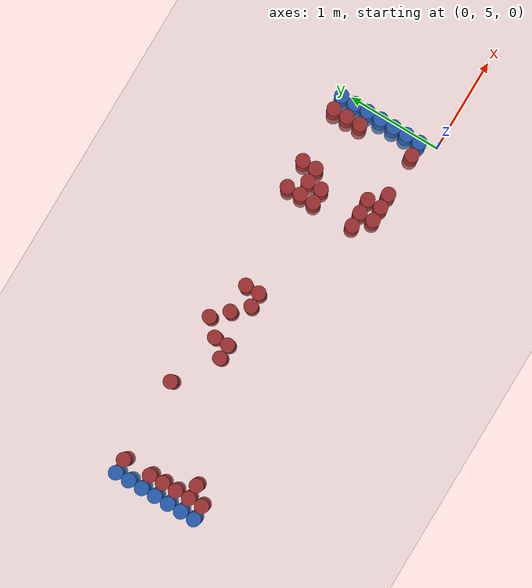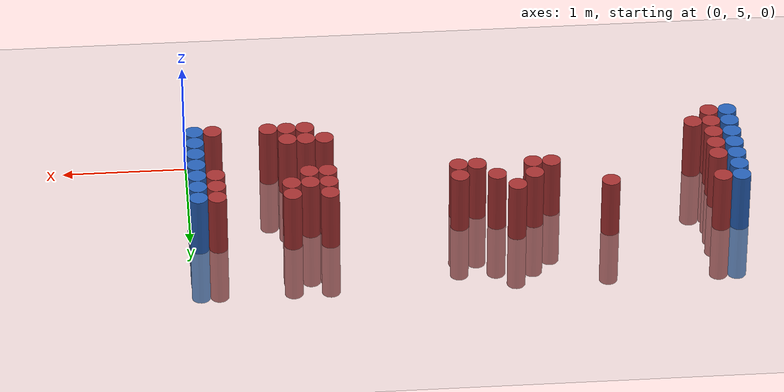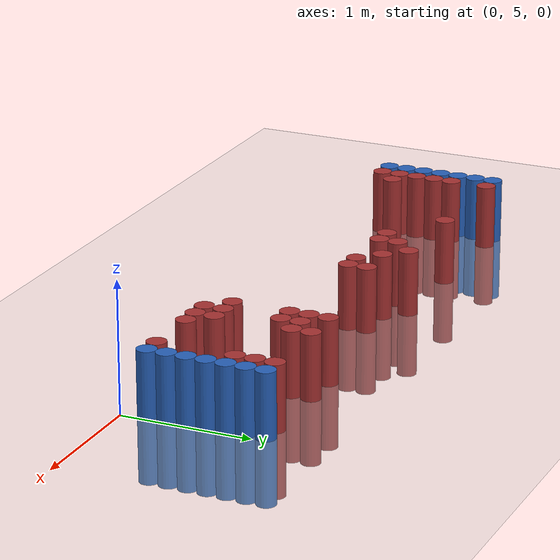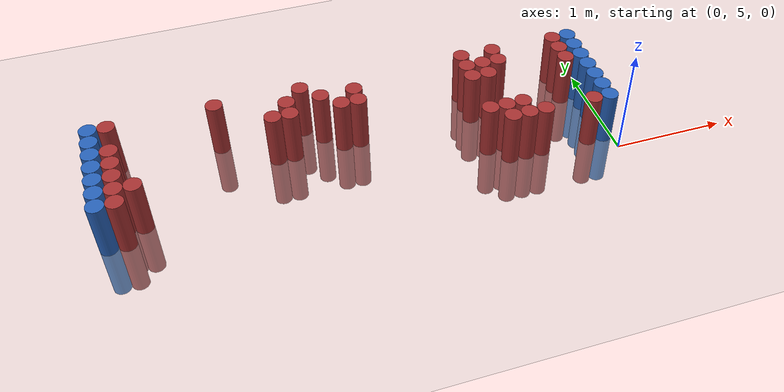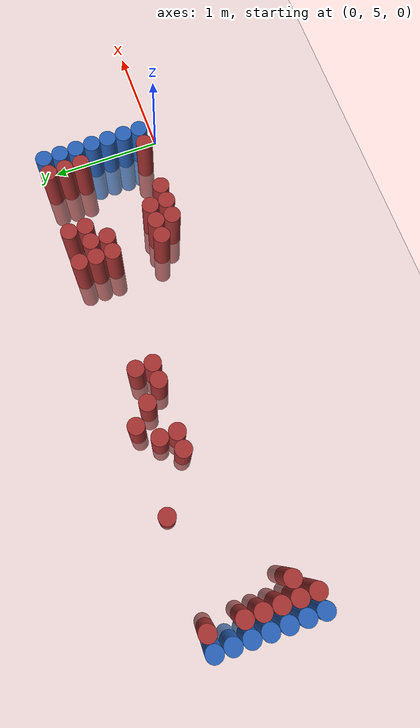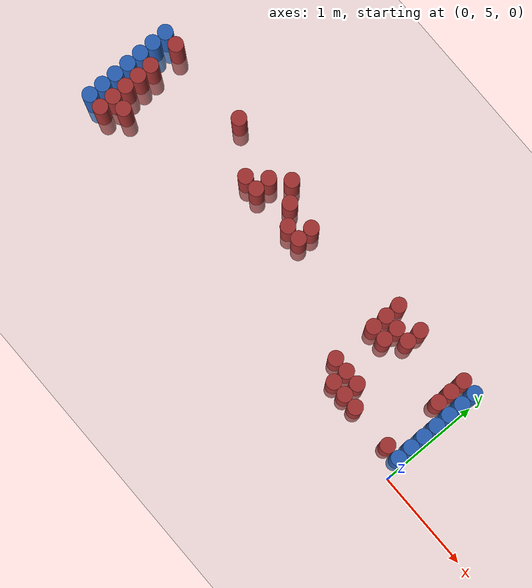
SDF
<sdf version="1.6">
 <world name="default">
  <model name="ground_plane">
   <static>1</static>
   <link name="link">
    <collision name="collision">
     <geometry><plane><normal>0 0 1</normal><size>100 100</size></plane></geometry>
     <surface><friction><ode><mu>100</mu><mu2>50</mu2></ode></friction></surface>
    </collision>
    <visual name="visual">
     <cast_shadows>0</cast_shadows>
     <geometry><plane><normal>0 0 1</normal><size>100 100</size></plane></geometry>
     <material>
      <script><uri>file://media/materials/scripts/gazebo.material</uri><name>Gazebo/Grey</name></script>
     </material>
    </visual>
   </link>
  </model>
  <model name="unit_cylinder_96">
   <static>1</static>
   <pose>-4.425000 5.175000 0.000000 0.000000 0.000000 0.000000</pose>
   <link name="link">
    <inertial>
     <mass>1</mass>
     <inertia><ixx>0.145833</ixx><ixy>0</ixy><ixz>0</ixz><iyy>0.145833</iyy><iyz>0</iyz><izz>0.125</izz></inertia>
    </inertial>
    <collision name="collision">
     <geometry><cylinder><radius>0.075000</radius><length>1</length></cylinder></geometry>
    </collision>
    <visual name="visual">
     <geometry><cylinder><radius>0.075000</radius><length>1</length></cylinder></geometry>
     <material>
      <ambient>0.152000 0.379000 0.720000 1</ambient>
      <diffuse>0.152000 0.379000 0.720000 1</diffuse>
     </material>
     <material>
      <script><name>Gazebo/Grey</name><uri>file://media/materials/scripts/gazebo.material</uri></script>
     </material>
    </visual>
   </link>
  </model>
  <model name="unit_cylinder_97">
   <static>1</static>
   <pose>-4.425000 5.325000 0.000000 0.000000 0.000000 0.000000</pose>
   <link name="link">
    <inertial>
     <mass>1</mass>
     <inertia><ixx>0.145833</ixx><ixy>0</ixy><ixz>0</ixz><iyy>0.145833</iyy><iyz>0</iyz><izz>0.125</izz></inertia>
    </inertial>
    <collision name="collision">
     <geometry><cylinder><radius>0.075000</radius><length>1</length></cylinder></geometry>
    </collision>
    <visual name="visual">
     <geometry><cylinder><radius>0.075000</radius><length>1</length></cylinder></geometry>
     <material>
      <ambient>0.152000 0.379000 0.720000 1</ambient>
      <diffuse>0.152000 0.379000 0.720000 1</diffuse>
     </material>
     <material>
      <script><name>Gazebo/Grey</name><uri>file://media/materials/scripts/gazebo.material</uri></script>
     </material>
    </visual>
   </link>
  </model>
  <model name="unit_cylinder_98">
   <static>1</static>
   <pose>-4.425000 5.475000 0.000000 0.000000 0.000000 0.000000</pose>
   <link name="link">
    <inertial>
     <mass>1</mass>
     <inertia><ixx>0.145833</ixx><ixy>0</ixy><ixz>0</ixz><iyy>0.145833</iyy><iyz>0</iyz><izz>0.125</izz></inertia>
    </inertial>
    <collision name="collision">
     <geometry><cylinder><radius>0.075000</radius><length>1</length></cylinder></geometry>
    </collision>
    <visual name="visual">
     <geometry><cylinder><radius>0.075000</radius><length>1</length></cylinder></geometry>
     <material>
      <ambient>0.152000 0.379000 0.720000 1</ambient>
      <diffuse>0.152000 0.379000 0.720000 1</diffuse>
     </material>
     <material>
      <script><name>Gazebo/Grey</name><uri>file://media/materials/scripts/gazebo.material</uri></script>
     </material>
    </visual>
   </link>
  </model>
  <model name="unit_cylinder_99">
   <static>1</static>
   <pose>-4.425000 5.625000 0.000000 0.000000 0.000000 0.000000</pose>
   <link name="link">
    <inertial>
     <mass>1</mass>
     <inertia><ixx>0.145833</ixx><ixy>0</ixy><ixz>0</ixz><iyy>0.145833</iyy><iyz>0</iyz><izz>0.125</izz></inertia>
    </inertial>
    <collision name="collision">
     <geometry><cylinder><radius>0.075000</radius><length>1</length></cylinder></geometry>
    </collision>
    <visual name="visual">
     <geometry><cylinder><radius>0.075000</radius><length>1</length></cylinder></geometry>
     <material>
      <ambient>0.152000 0.379000 0.720000 1</ambient>
      <diffuse>0.152000 0.379000 0.720000 1</diffuse>
     </material>
     <material>
      <script><name>Gazebo/Grey</name><uri>file://media/materials/scripts/gazebo.material</uri></script>
     </material>
    </visual>
   </link>
  </model>
  <model name="unit_cylinder_100">
   <static>1</static>
   <pose>-4.425000 5.775000 0.000000 0.000000 0.000000 0.000000</pose>
   <link name="link">
    <inertial>
     <mass>1</mass>
     <inertia><ixx>0.145833</ixx><ixy>0</ixy><ixz>0</ixz><iyy>0.145833</iyy><iyz>0</iyz><izz>0.125</izz></inertia>
    </inertial>
    <collision name="collision">
     <geometry><cylinder><radius>0.075000</radius><length>1</length></cylinder></geometry>
    </collision>
    <visual name="visual">
     <geometry><cylinder><radius>0.075000</radius><length>1</length></cylinder></geometry>
     <material>
      <ambient>0.152000 0.379000 0.720000 1</ambient>
      <diffuse>0.152000 0.379000 0.720000 1</diffuse>
     </material>
     <material>
      <script><name>Gazebo/Grey</name><uri>file://media/materials/scripts/gazebo.material</uri></script>
     </material>
    </visual>
   </link>
  </model>
  <model name="unit_cylinder_101">
   <static>1</static>
   <pose>-4.425000 5.925000 0.000000 0.000000 0.000000 0.000000</pose>
   <link name="link">
    <inertial>
     <mass>1</mass>
     <inertia><ixx>0.145833</ixx><ixy>0</ixy><ixz>0</ixz><iyy>0.145833</iyy><iyz>0</iyz><izz>0.125</izz></inertia>
    </inertial>
    <collision name="collision">
     <geometry><cylinder><radius>0.075000</radius><length>1</length></cylinder></geometry>
    </collision>
    <visual name="visual">
     <geometry><cylinder><radius>0.075000</radius><length>1</length></cylinder></geometry>
     <material>
      <ambient>0.152000 0.379000 0.720000 1</ambient>
      <diffuse>0.152000 0.379000 0.720000 1</diffuse>
     </material>
     <material>
      <script><name>Gazebo/Grey</name><uri>file://media/materials/scripts/gazebo.material</uri></script>
     </material>
    </visual>
   </link>
  </model>
  <model name="unit_cylinder_102">
   <static>1</static>
   <pose>-4.425000 6.075000 0.000000 0.000000 0.000000 0.000000</pose>
   <link name="link">
    <inertial>
     <mass>1</mass>
     <inertia><ixx>0.145833</ixx><ixy>0</ixy><ixz>0</ixz><iyy>0.145833</iyy><iyz>0</iyz><izz>0.125</izz></inertia>
    </inertial>
    <collision name="collision">
     <geometry><cylinder><radius>0.075000</radius><length>1</length></cylinder></geometry>
    </collision>
    <visual name="visual">
     <geometry><cylinder><radius>0.075000</radius><length>1</length></cylinder></geometry>
     <material>
      <ambient>0.152000 0.379000 0.720000 1</ambient>
      <diffuse>0.152000 0.379000 0.720000 1</diffuse>
     </material>
     <material>
      <script><name>Gazebo/Grey</name><uri>file://media/materials/scripts/gazebo.material</uri></script>
     </material>
    </visual>
   </link>
  </model>
  <model name="unit_cylinder_126">
   <static>1</static>
   <pose>-4.275000 5.175000 0.000000 0.000000 0.000000 0.000000</pose>
   <link name="link">
    <inertial>
     <mass>1</mass>
     <inertia><ixx>0.145833</ixx><ixy>0</ixy><ixz>0</ixz><iyy>0.145833</iyy><iyz>0</iyz><izz>0.125</izz></inertia>
    </inertial>
    <collision name="collision">
     <geometry><cylinder><radius>0.075000</radius><length>1</length></cylinder></geometry>
    </collision>
    <visual name="visual">
     <geometry><cylinder><radius>0.075000</radius><length>1</length></cylinder></geometry>
     <material>
      <ambient>0.648000 0.192000 0.192000 1</ambient>
      <diffuse>0.648000 0.192000 0.192000 1</diffuse>
     </material>
     <material>
      <script><name>Gazebo/Grey</name><uri>file://media/materials/scripts/gazebo.material</uri></script>
     </material>
    </visual>
   </link>
  </model>
  <model name="unit_cylinder_127">
   <static>1</static>
   <pose>-4.275000 5.325000 0.000000 0.000000 0.000000 0.000000</pose>
   <link name="link">
    <inertial>
     <mass>1</mass>
     <inertia><ixx>0.145833</ixx><ixy>0</ixy><ixz>0</ixz><iyy>0.145833</iyy><iyz>0</iyz><izz>0.125</izz></inertia>
    </inertial>
    <collision name="collision">
     <geometry><cylinder><radius>0.075000</radius><length>1</length></cylinder></geometry>
    </collision>
    <visual name="visual">
     <geometry><cylinder><radius>0.075000</radius><length>1</length></cylinder></geometry>
     <material>
      <ambient>0.648000 0.192000 0.192000 1</ambient>
      <diffuse>0.648000 0.192000 0.192000 1</diffuse>
     </material>
     <material>
      <script><name>Gazebo/Grey</name><uri>file://media/materials/scripts/gazebo.material</uri></script>
     </material>
    </visual>
   </link>
  </model>
  <model name="unit_cylinder_128">
   <static>1</static>
   <pose>-4.275000 5.475000 0.000000 0.000000 0.000000 0.000000</pose>
   <link name="link">
    <inertial>
     <mass>1</mass>
     <inertia><ixx>0.145833</ixx><ixy>0</ixy><ixz>0</ixz><iyy>0.145833</iyy><iyz>0</iyz><izz>0.125</izz></inertia>
    </inertial>
    <collision name="collision">
     <geometry><cylinder><radius>0.075000</radius><length>1</length></cylinder></geometry>
    </collision>
    <visual name="visual">
     <geometry><cylinder><radius>0.075000</radius><length>1</length></cylinder></geometry>
     <material>
      <ambient>0.648000 0.192000 0.192000 1</ambient>
      <diffuse>0.648000 0.192000 0.192000 1</diffuse>
     </material>
     <material>
      <script><name>Gazebo/Grey</name><uri>file://media/materials/scripts/gazebo.material</uri></script>
     </material>
    </visual>
   </link>
  </model>
  <model name="unit_cylinder_129">
   <static>1</static>
   <pose>-4.275000 5.625000 0.000000 0.000000 0.000000 0.000000</pose>
   <link name="link">
    <inertial>
     <mass>1</mass>
     <inertia><ixx>0.145833</ixx><ixy>0</ixy><ixz>0</ixz><iyy>0.145833</iyy><iyz>0</iyz><izz>0.125</izz></inertia>
    </inertial>
    <collision name="collision">
     <geometry><cylinder><radius>0.075000</radius><length>1</length></cylinder></geometry>
    </collision>
    <visual name="visual">
     <geometry><cylinder><radius>0.075000</radius><length>1</length></cylinder></geometry>
     <material>
      <ambient>0.648000 0.192000 0.192000 1</ambient>
      <diffuse>0.648000 0.192000 0.192000 1</diffuse>
     </material>
     <material>
      <script><name>Gazebo/Grey</name><uri>file://media/materials/scripts/gazebo.material</uri></script>
     </material>
    </visual>
   </link>
  </model>
  <model name="unit_cylinder_130">
   <static>1</static>
   <pose>-4.275000 5.775000 0.000000 0.000000 0.000000 0.000000</pose>
   <link name="link">
    <inertial>
     <mass>1</mass>
     <inertia><ixx>0.145833</ixx><ixy>0</ixy><ixz>0</ixz><iyy>0.145833</iyy><iyz>0</iyz><izz>0.125</izz></inertia>
    </inertial>
    <collision name="collision">
     <geometry><cylinder><radius>0.075000</radius><length>1</length></cylinder></geometry>
    </collision>
    <visual name="visual">
     <geometry><cylinder><radius>0.075000</radius><length>1</length></cylinder></geometry>
     <material>
      <ambient>0.648000 0.192000 0.192000 1</ambient>
      <diffuse>0.648000 0.192000 0.192000 1</diffuse>
     </material>
     <material>
      <script><name>Gazebo/Grey</name><uri>file://media/materials/scripts/gazebo.material</uri></script>
     </material>
    </visual>
   </link>
  </model>
  <model name="unit_cylinder_131">
   <static>1</static>
   <pose>-4.275000 6.075000 0.000000 0.000000 0.000000 0.000000</pose>
   <link name="link">
    <inertial>
     <mass>1</mass>
     <inertia><ixx>0.145833</ixx><ixy>0</ixy><ixz>0</ixz><iyy>0.145833</iyy><iyz>0</iyz><izz>0.125</izz></inertia>
    </inertial>
    <collision name="collision">
     <geometry><cylinder><radius>0.075000</radius><length>1</length></cylinder></geometry>
    </collision>
    <visual name="visual">
     <geometry><cylinder><radius>0.075000</radius><length>1</length></cylinder></geometry>
     <material>
      <ambient>0.648000 0.192000 0.192000 1</ambient>
      <diffuse>0.648000 0.192000 0.192000 1</diffuse>
     </material>
     <material>
      <script><name>Gazebo/Grey</name><uri>file://media/materials/scripts/gazebo.material</uri></script>
     </material>
    </visual>
   </link>
  </model>
  <model name="unit_cylinder_142">
   <static>1</static>
   <pose>-4.125000 5.325000 0.000000 0.000000 0.000000 0.000000</pose>
   <link name="link">
    <inertial>
     <mass>1</mass>
     <inertia><ixx>0.145833</ixx><ixy>0</ixy><ixz>0</ixz><iyy>0.145833</iyy><iyz>0</iyz><izz>0.125</izz></inertia>
    </inertial>
    <collision name="collision">
     <geometry><cylinder><radius>0.075000</radius><length>1</length></cylinder></geometry>
    </collision>
    <visual name="visual">
     <geometry><cylinder><radius>0.075000</radius><length>1</length></cylinder></geometry>
     <material>
      <ambient>0.648000 0.192000 0.192000 1</ambient>
      <diffuse>0.648000 0.192000 0.192000 1</diffuse>
     </material>
     <material>
      <script><name>Gazebo/Grey</name><uri>file://media/materials/scripts/gazebo.material</uri></script>
     </material>
    </visual>
   </link>
  </model>
  <model name="unit_cylinder_178">
   <static>1</static>
   <pose>-3.375000 6.075000 0.000000 0.000000 0.000000 0.000000</pose>
   <link name="link">
    <inertial>
     <mass>1</mass>
     <inertia><ixx>0.145833</ixx><ixy>0</ixy><ixz>0</ixz><iyy>0.145833</iyy><iyz>0</iyz><izz>0.125</izz></inertia>
    </inertial>
    <collision name="collision">
     <geometry><cylinder><radius>0.075000</radius><length>1</length></cylinder></geometry>
    </collision>
    <visual name="visual">
     <geometry><cylinder><radius>0.075000</radius><length>1</length></cylinder></geometry>
     <material>
      <ambient>0.648000 0.192000 0.192000 1</ambient>
      <diffuse>0.648000 0.192000 0.192000 1</diffuse>
     </material>
     <material>
      <script><name>Gazebo/Grey</name><uri>file://media/materials/scripts/gazebo.material</uri></script>
     </material>
    </visual>
   </link>
  </model>
  <model name="unit_cylinder_198">
   <static>1</static>
   <pose>-2.925000 5.775000 0.000000 0.000000 0.000000 0.000000</pose>
   <link name="link">
    <inertial>
     <mass>1</mass>
     <inertia><ixx>0.145833</ixx><ixy>0</ixy><ixz>0</ixz><iyy>0.145833</iyy><iyz>0</iyz><izz>0.125</izz></inertia>
    </inertial>
    <collision name="collision">
     <geometry><cylinder><radius>0.075000</radius><length>1</length></cylinder></geometry>
    </collision>
    <visual name="visual">
     <geometry><cylinder><radius>0.075000</radius><length>1</length></cylinder></geometry>
     <material>
      <ambient>0.648000 0.192000 0.192000 1</ambient>
      <diffuse>0.648000 0.192000 0.192000 1</diffuse>
     </material>
     <material>
      <script><name>Gazebo/Grey</name><uri>file://media/materials/scripts/gazebo.material</uri></script>
     </material>
    </visual>
   </link>
  </model>
  <model name="unit_cylinder_205">
   <static>1</static>
   <pose>-2.775000 5.775000 0.000000 0.000000 0.000000 0.000000</pose>
   <link name="link">
    <inertial>
     <mass>1</mass>
     <inertia><ixx>0.145833</ixx><ixy>0</ixy><ixz>0</ixz><iyy>0.145833</iyy><iyz>0</iyz><izz>0.125</izz></inertia>
    </inertial>
    <collision name="collision">
     <geometry><cylinder><radius>0.075000</radius><length>1</length></cylinder></geometry>
    </collision>
    <visual name="visual">
     <geometry><cylinder><radius>0.075000</radius><length>1</length></cylinder></geometry>
     <material>
      <ambient>0.648000 0.192000 0.192000 1</ambient>
      <diffuse>0.648000 0.192000 0.192000 1</diffuse>
     </material>
     <material>
      <script><name>Gazebo/Grey</name><uri>file://media/materials/scripts/gazebo.material</uri></script>
     </material>
    </visual>
   </link>
  </model>
  <model name="unit_cylinder_206">
   <static>1</static>
   <pose>-2.775000 5.925000 0.000000 0.000000 0.000000 0.000000</pose>
   <link name="link">
    <inertial>
     <mass>1</mass>
     <inertia><ixx>0.145833</ixx><ixy>0</ixy><ixz>0</ixz><iyy>0.145833</iyy><iyz>0</iyz><izz>0.125</izz></inertia>
    </inertial>
    <collision name="collision">
     <geometry><cylinder><radius>0.075000</radius><length>1</length></cylinder></geometry>
    </collision>
    <visual name="visual">
     <geometry><cylinder><radius>0.075000</radius><length>1</length></cylinder></geometry>
     <material>
      <ambient>0.648000 0.192000 0.192000 1</ambient>
      <diffuse>0.648000 0.192000 0.192000 1</diffuse>
     </material>
     <material>
      <script><name>Gazebo/Grey</name><uri>file://media/materials/scripts/gazebo.material</uri></script>
     </material>
    </visual>
   </link>
  </model>
  <model name="unit_cylinder_208">
   <static>1</static>
   <pose>-2.625000 6.075000 0.000000 0.000000 0.000000 0.000000</pose>
   <link name="link">
    <inertial>
     <mass>1</mass>
     <inertia><ixx>0.145833</ixx><ixy>0</ixy><ixz>0</ixz><iyy>0.145833</iyy><iyz>0</iyz><izz>0.125</izz></inertia>
    </inertial>
    <collision name="collision">
     <geometry><cylinder><radius>0.075000</radius><length>1</length></cylinder></geometry>
    </collision>
    <visual name="visual">
     <geometry><cylinder><radius>0.075000</radius><length>1</length></cylinder></geometry>
     <material>
      <ambient>0.648000 0.192000 0.192000 1</ambient>
      <diffuse>0.648000 0.192000 0.192000 1</diffuse>
     </material>
     <material>
      <script><name>Gazebo/Grey</name><uri>file://media/materials/scripts/gazebo.material</uri></script>
     </material>
    </visual>
   </link>
  </model>
  <model name="unit_cylinder_210">
   <static>1</static>
   <pose>-2.475000 5.925000 0.000000 0.000000 0.000000 0.000000</pose>
   <link name="link">
    <inertial>
     <mass>1</mass>
     <inertia><ixx>0.145833</ixx><ixy>0</ixy><ixz>0</ixz><iyy>0.145833</iyy><iyz>0</iyz><izz>0.125</izz></inertia>
    </inertial>
    <collision name="collision">
     <geometry><cylinder><radius>0.075000</radius><length>1</length></cylinder></geometry>
    </collision>
    <visual name="visual">
     <geometry><cylinder><radius>0.075000</radius><length>1</length></cylinder></geometry>
     <material>
      <ambient>0.648000 0.192000 0.192000 1</ambient>
      <diffuse>0.648000 0.192000 0.192000 1</diffuse>
     </material>
     <material>
      <script><name>Gazebo/Grey</name><uri>file://media/materials/scripts/gazebo.material</uri></script>
     </material>
    </visual>
   </link>
  </model>
  <model name="unit_cylinder_213">
   <static>1</static>
   <pose>-2.325000 5.775000 0.000000 0.000000 0.000000 0.000000</pose>
   <link name="link">
    <inertial>
     <mass>1</mass>
     <inertia><ixx>0.145833</ixx><ixy>0</ixy><ixz>0</ixz><iyy>0.145833</iyy><iyz>0</iyz><izz>0.125</izz></inertia>
    </inertial>
    <collision name="collision">
     <geometry><cylinder><radius>0.075000</radius><length>1</length></cylinder></geometry>
    </collision>
    <visual name="visual">
     <geometry><cylinder><radius>0.075000</radius><length>1</length></cylinder></geometry>
     <material>
      <ambient>0.648000 0.192000 0.192000 1</ambient>
      <diffuse>0.648000 0.192000 0.192000 1</diffuse>
     </material>
     <material>
      <script><name>Gazebo/Grey</name><uri>file://media/materials/scripts/gazebo.material</uri></script>
     </material>
    </visual>
   </link>
  </model>
  <model name="unit_cylinder_215">
   <static>1</static>
   <pose>-2.175000 5.775000 0.000000 0.000000 0.000000 0.000000</pose>
   <link name="link">
    <inertial>
     <mass>1</mass>
     <inertia><ixx>0.145833</ixx><ixy>0</ixy><ixz>0</ixz><iyy>0.145833</iyy><iyz>0</iyz><izz>0.125</izz></inertia>
    </inertial>
    <collision name="collision">
     <geometry><cylinder><radius>0.075000</radius><length>1</length></cylinder></geometry>
    </collision>
    <visual name="visual">
     <geometry><cylinder><radius>0.075000</radius><length>1</length></cylinder></geometry>
     <material>
      <ambient>0.648000 0.192000 0.192000 1</ambient>
      <diffuse>0.648000 0.192000 0.192000 1</diffuse>
     </material>
     <material>
      <script><name>Gazebo/Grey</name><uri>file://media/materials/scripts/gazebo.material</uri></script>
     </material>
    </visual>
   </link>
  </model>
  <model name="unit_cylinder_216">
   <static>1</static>
   <pose>-2.175000 5.925000 0.000000 0.000000 0.000000 0.000000</pose>
   <link name="link">
    <inertial>
     <mass>1</mass>
     <inertia><ixx>0.145833</ixx><ixy>0</ixy><ixz>0</ixz><iyy>0.145833</iyy><iyz>0</iyz><izz>0.125</izz></inertia>
    </inertial>
    <collision name="collision">
     <geometry><cylinder><radius>0.075000</radius><length>1</length></cylinder></geometry>
    </collision>
    <visual name="visual">
     <geometry><cylinder><radius>0.075000</radius><length>1</length></cylinder></geometry>
     <material>
      <ambient>0.648000 0.192000 0.192000 1</ambient>
      <diffuse>0.648000 0.192000 0.192000 1</diffuse>
     </material>
     <material>
      <script><name>Gazebo/Grey</name><uri>file://media/materials/scripts/gazebo.material</uri></script>
     </material>
    </visual>
   </link>
  </model>
  <model name="unit_cylinder_235">
   <static>1</static>
   <pose>-1.125000 5.325000 0.000000 0.000000 0.000000 0.000000</pose>
   <link name="link">
    <inertial>
     <mass>1</mass>
     <inertia><ixx>0.145833</ixx><ixy>0</ixy><ixz>0</ixz><iyy>0.145833</iyy><iyz>0</iyz><izz>0.125</izz></inertia>
    </inertial>
    <collision name="collision">
     <geometry><cylinder><radius>0.075000</radius><length>1</length></cylinder></geometry>
    </collision>
    <visual name="visual">
     <geometry><cylinder><radius>0.075000</radius><length>1</length></cylinder></geometry>
     <material>
      <ambient>0.648000 0.192000 0.192000 1</ambient>
      <diffuse>0.648000 0.192000 0.192000 1</diffuse>
     </material>
     <material>
      <script><name>Gazebo/Grey</name><uri>file://media/materials/scripts/gazebo.material</uri></script>
     </material>
    </visual>
   </link>
  </model>
  <model name="unit_cylinder_236">
   <static>1</static>
   <pose>-1.125000 5.775000 0.000000 0.000000 0.000000 0.000000</pose>
   <link name="link">
    <inertial>
     <mass>1</mass>
     <inertia><ixx>0.145833</ixx><ixy>0</ixy><ixz>0</ixz><iyy>0.145833</iyy><iyz>0</iyz><izz>0.125</izz></inertia>
    </inertial>
    <collision name="collision">
     <geometry><cylinder><radius>0.075000</radius><length>1</length></cylinder></geometry>
    </collision>
    <visual name="visual">
     <geometry><cylinder><radius>0.075000</radius><length>1</length></cylinder></geometry>
     <material>
      <ambient>0.648000 0.192000 0.192000 1</ambient>
      <diffuse>0.648000 0.192000 0.192000 1</diffuse>
     </material>
     <material>
      <script><name>Gazebo/Grey</name><uri>file://media/materials/scripts/gazebo.material</uri></script>
     </material>
    </visual>
   </link>
  </model>
  <model name="unit_cylinder_237">
   <static>1</static>
   <pose>-1.125000 5.925000 0.000000 0.000000 0.000000 0.000000</pose>
   <link name="link">
    <inertial>
     <mass>1</mass>
     <inertia><ixx>0.145833</ixx><ixy>0</ixy><ixz>0</ixz><iyy>0.145833</iyy><iyz>0</iyz><izz>0.125</izz></inertia>
    </inertial>
    <collision name="collision">
     <geometry><cylinder><radius>0.075000</radius><length>1</length></cylinder></geometry>
    </collision>
    <visual name="visual">
     <geometry><cylinder><radius>0.075000</radius><length>1</length></cylinder></geometry>
     <material>
      <ambient>0.648000 0.192000 0.192000 1</ambient>
      <diffuse>0.648000 0.192000 0.192000 1</diffuse>
     </material>
     <material>
      <script><name>Gazebo/Grey</name><uri>file://media/materials/scripts/gazebo.material</uri></script>
     </material>
    </visual>
   </link>
  </model>
  <model name="unit_cylinder_238">
   <static>1</static>
   <pose>-1.125000 6.075000 0.000000 0.000000 0.000000 0.000000</pose>
   <link name="link">
    <inertial>
     <mass>1</mass>
     <inertia><ixx>0.145833</ixx><ixy>0</ixy><ixz>0</ixz><iyy>0.145833</iyy><iyz>0</iyz><izz>0.125</izz></inertia>
    </inertial>
    <collision name="collision">
     <geometry><cylinder><radius>0.075000</radius><length>1</length></cylinder></geometry>
    </collision>
    <visual name="visual">
     <geometry><cylinder><radius>0.075000</radius><length>1</length></cylinder></geometry>
     <material>
      <ambient>0.648000 0.192000 0.192000 1</ambient>
      <diffuse>0.648000 0.192000 0.192000 1</diffuse>
     </material>
     <material>
      <script><name>Gazebo/Grey</name><uri>file://media/materials/scripts/gazebo.material</uri></script>
     </material>
    </visual>
   </link>
  </model>
  <model name="unit_cylinder_247">
   <static>1</static>
   <pose>-0.975000 5.175000 0.000000 0.000000 0.000000 0.000000</pose>
   <link name="link">
    <inertial>
     <mass>1</mass>
     <inertia><ixx>0.145833</ixx><ixy>0</ixy><ixz>0</ixz><iyy>0.145833</iyy><iyz>0</iyz><izz>0.125</izz></inertia>
    </inertial>
    <collision name="collision">
     <geometry><cylinder><radius>0.075000</radius><length>1</length></cylinder></geometry>
    </collision>
    <visual name="visual">
     <geometry><cylinder><radius>0.075000</radius><length>1</length></cylinder></geometry>
     <material>
      <ambient>0.648000 0.192000 0.192000 1</ambient>
      <diffuse>0.648000 0.192000 0.192000 1</diffuse>
     </material>
     <material>
      <script><name>Gazebo/Grey</name><uri>file://media/materials/scripts/gazebo.material</uri></script>
     </material>
    </visual>
   </link>
  </model>
  <model name="unit_cylinder_248">
   <static>1</static>
   <pose>-0.975000 5.325000 0.000000 0.000000 0.000000 0.000000</pose>
   <link name="link">
    <inertial>
     <mass>1</mass>
     <inertia><ixx>0.145833</ixx><ixy>0</ixy><ixz>0</ixz><iyy>0.145833</iyy><iyz>0</iyz><izz>0.125</izz></inertia>
    </inertial>
    <collision name="collision">
     <geometry><cylinder><radius>0.075000</radius><length>1</length></cylinder></geometry>
    </collision>
    <visual name="visual">
     <geometry><cylinder><radius>0.075000</radius><length>1</length></cylinder></geometry>
     <material>
      <ambient>0.648000 0.192000 0.192000 1</ambient>
      <diffuse>0.648000 0.192000 0.192000 1</diffuse>
     </material>
     <material>
      <script><name>Gazebo/Grey</name><uri>file://media/materials/scripts/gazebo.material</uri></script>
     </material>
    </visual>
   </link>
  </model>
  <model name="unit_cylinder_249">
   <static>1</static>
   <pose>-0.975000 5.775000 0.000000 0.000000 0.000000 0.000000</pose>
   <link name="link">
    <inertial>
     <mass>1</mass>
     <inertia><ixx>0.145833</ixx><ixy>0</ixy><ixz>0</ixz><iyy>0.145833</iyy><iyz>0</iyz><izz>0.125</izz></inertia>
    </inertial>
    <collision name="collision">
     <geometry><cylinder><radius>0.075000</radius><length>1</length></cylinder></geometry>
    </collision>
    <visual name="visual">
     <geometry><cylinder><radius>0.075000</radius><length>1</length></cylinder></geometry>
     <material>
      <ambient>0.648000 0.192000 0.192000 1</ambient>
      <diffuse>0.648000 0.192000 0.192000 1</diffuse>
     </material>
     <material>
      <script><name>Gazebo/Grey</name><uri>file://media/materials/scripts/gazebo.material</uri></script>
     </material>
    </visual>
   </link>
  </model>
  <model name="unit_cylinder_250">
   <static>1</static>
   <pose>-0.975000 5.925000 0.000000 0.000000 0.000000 0.000000</pose>
   <link name="link">
    <inertial>
     <mass>1</mass>
     <inertia><ixx>0.145833</ixx><ixy>0</ixy><ixz>0</ixz><iyy>0.145833</iyy><iyz>0</iyz><izz>0.125</izz></inertia>
    </inertial>
    <collision name="collision">
     <geometry><cylinder><radius>0.075000</radius><length>1</length></cylinder></geometry>
    </collision>
    <visual name="visual">
     <geometry><cylinder><radius>0.075000</radius><length>1</length></cylinder></geometry>
     <material>
      <ambient>0.648000 0.192000 0.192000 1</ambient>
      <diffuse>0.648000 0.192000 0.192000 1</diffuse>
     </material>
     <material>
      <script><name>Gazebo/Grey</name><uri>file://media/materials/scripts/gazebo.material</uri></script>
     </material>
    </visual>
   </link>
  </model>
  <model name="unit_cylinder_260">
   <static>1</static>
   <pose>-0.825000 5.175000 0.000000 0.000000 0.000000 0.000000</pose>
   <link name="link">
    <inertial>
     <mass>1</mass>
     <inertia><ixx>0.145833</ixx><ixy>0</ixy><ixz>0</ixz><iyy>0.145833</iyy><iyz>0</iyz><izz>0.125</izz></inertia>
    </inertial>
    <collision name="collision">
     <geometry><cylinder><radius>0.075000</radius><length>1</length></cylinder></geometry>
    </collision>
    <visual name="visual">
     <geometry><cylinder><radius>0.075000</radius><length>1</length></cylinder></geometry>
     <material>
      <ambient>0.648000 0.192000 0.192000 1</ambient>
      <diffuse>0.648000 0.192000 0.192000 1</diffuse>
     </material>
     <material>
      <script><name>Gazebo/Grey</name><uri>file://media/materials/scripts/gazebo.material</uri></script>
     </material>
    </visual>
   </link>
  </model>
  <model name="unit_cylinder_261">
   <static>1</static>
   <pose>-0.825000 5.325000 0.000000 0.000000 0.000000 0.000000</pose>
   <link name="link">
    <inertial>
     <mass>1</mass>
     <inertia><ixx>0.145833</ixx><ixy>0</ixy><ixz>0</ixz><iyy>0.145833</iyy><iyz>0</iyz><izz>0.125</izz></inertia>
    </inertial>
    <collision name="collision">
     <geometry><cylinder><radius>0.075000</radius><length>1</length></cylinder></geometry>
    </collision>
    <visual name="visual">
     <geometry><cylinder><radius>0.075000</radius><length>1</length></cylinder></geometry>
     <material>
      <ambient>0.648000 0.192000 0.192000 1</ambient>
      <diffuse>0.648000 0.192000 0.192000 1</diffuse>
     </material>
     <material>
      <script><name>Gazebo/Grey</name><uri>file://media/materials/scripts/gazebo.material</uri></script>
     </material>
    </visual>
   </link>
  </model>
  <model name="unit_cylinder_262">
   <static>1</static>
   <pose>-0.825000 5.925000 0.000000 0.000000 0.000000 0.000000</pose>
   <link name="link">
    <inertial>
     <mass>1</mass>
     <inertia><ixx>0.145833</ixx><ixy>0</ixy><ixz>0</ixz><iyy>0.145833</iyy><iyz>0</iyz><izz>0.125</izz></inertia>
    </inertial>
    <collision name="collision">
     <geometry><cylinder><radius>0.075000</radius><length>1</length></cylinder></geometry>
    </collision>
    <visual name="visual">
     <geometry><cylinder><radius>0.075000</radius><length>1</length></cylinder></geometry>
     <material>
      <ambient>0.648000 0.192000 0.192000 1</ambient>
      <diffuse>0.648000 0.192000 0.192000 1</diffuse>
     </material>
     <material>
      <script><name>Gazebo/Grey</name><uri>file://media/materials/scripts/gazebo.material</uri></script>
     </material>
    </visual>
   </link>
  </model>
  <model name="unit_cylinder_263">
   <static>1</static>
   <pose>-0.825000 6.075000 0.000000 0.000000 0.000000 0.000000</pose>
   <link name="link">
    <inertial>
     <mass>1</mass>
     <inertia><ixx>0.145833</ixx><ixy>0</ixy><ixz>0</ixz><iyy>0.145833</iyy><iyz>0</iyz><izz>0.125</izz></inertia>
    </inertial>
    <collision name="collision">
     <geometry><cylinder><radius>0.075000</radius><length>1</length></cylinder></geometry>
    </collision>
    <visual name="visual">
     <geometry><cylinder><radius>0.075000</radius><length>1</length></cylinder></geometry>
     <material>
      <ambient>0.648000 0.192000 0.192000 1</ambient>
      <diffuse>0.648000 0.192000 0.192000 1</diffuse>
     </material>
     <material>
      <script><name>Gazebo/Grey</name><uri>file://media/materials/scripts/gazebo.material</uri></script>
     </material>
    </visual>
   </link>
  </model>
  <model name="unit_cylinder_271">
   <static>1</static>
   <pose>-0.675000 5.175000 0.000000 0.000000 0.000000 0.000000</pose>
   <link name="link">
    <inertial>
     <mass>1</mass>
     <inertia><ixx>0.145833</ixx><ixy>0</ixy><ixz>0</ixz><iyy>0.145833</iyy><iyz>0</iyz><izz>0.125</izz></inertia>
    </inertial>
    <collision name="collision">
     <geometry><cylinder><radius>0.075000</radius><length>1</length></cylinder></geometry>
    </collision>
    <visual name="visual">
     <geometry><cylinder><radius>0.075000</radius><length>1</length></cylinder></geometry>
     <material>
      <ambient>0.648000 0.192000 0.192000 1</ambient>
      <diffuse>0.648000 0.192000 0.192000 1</diffuse>
     </material>
     <material>
      <script><name>Gazebo/Grey</name><uri>file://media/materials/scripts/gazebo.material</uri></script>
     </material>
    </visual>
   </link>
  </model>
  <model name="unit_cylinder_292">
   <static>1</static>
   <pose>-0.225000 5.175000 0.000000 0.000000 0.000000 0.000000</pose>
   <link name="link">
    <inertial>
     <mass>1</mass>
     <inertia><ixx>0.145833</ixx><ixy>0</ixy><ixz>0</ixz><iyy>0.145833</iyy><iyz>0</iyz><izz>0.125</izz></inertia>
    </inertial>
    <collision name="collision">
     <geometry><cylinder><radius>0.075000</radius><length>1</length></cylinder></geometry>
    </collision>
    <visual name="visual">
     <geometry><cylinder><radius>0.075000</radius><length>1</length></cylinder></geometry>
     <material>
      <ambient>0.648000 0.192000 0.192000 1</ambient>
      <diffuse>0.648000 0.192000 0.192000 1</diffuse>
     </material>
     <material>
      <script><name>Gazebo/Grey</name><uri>file://media/materials/scripts/gazebo.material</uri></script>
     </material>
    </visual>
   </link>
  </model>
  <model name="unit_cylinder_293">
   <static>1</static>
   <pose>-0.225000 5.775000 0.000000 0.000000 0.000000 0.000000</pose>
   <link name="link">
    <inertial>
     <mass>1</mass>
     <inertia><ixx>0.145833</ixx><ixy>0</ixy><ixz>0</ixz><iyy>0.145833</iyy><iyz>0</iyz><izz>0.125</izz></inertia>
    </inertial>
    <collision name="collision">
     <geometry><cylinder><radius>0.075000</radius><length>1</length></cylinder></geometry>
    </collision>
    <visual name="visual">
     <geometry><cylinder><radius>0.075000</radius><length>1</length></cylinder></geometry>
     <material>
      <ambient>0.648000 0.192000 0.192000 1</ambient>
      <diffuse>0.648000 0.192000 0.192000 1</diffuse>
     </material>
     <material>
      <script><name>Gazebo/Grey</name><uri>file://media/materials/scripts/gazebo.material</uri></script>
     </material>
    </visual>
   </link>
  </model>
  <model name="unit_cylinder_294">
   <static>1</static>
   <pose>-0.225000 5.925000 0.000000 0.000000 0.000000 0.000000</pose>
   <link name="link">
    <inertial>
     <mass>1</mass>
     <inertia><ixx>0.145833</ixx><ixy>0</ixy><ixz>0</ixz><iyy>0.145833</iyy><iyz>0</iyz><izz>0.125</izz></inertia>
    </inertial>
    <collision name="collision">
     <geometry><cylinder><radius>0.075000</radius><length>1</length></cylinder></geometry>
    </collision>
    <visual name="visual">
     <geometry><cylinder><radius>0.075000</radius><length>1</length></cylinder></geometry>
     <material>
      <ambient>0.648000 0.192000 0.192000 1</ambient>
      <diffuse>0.648000 0.192000 0.192000 1</diffuse>
     </material>
     <material>
      <script><name>Gazebo/Grey</name><uri>file://media/materials/scripts/gazebo.material</uri></script>
     </material>
    </visual>
   </link>
  </model>
  <model name="unit_cylinder_295">
   <static>1</static>
   <pose>-0.225000 6.075000 0.000000 0.000000 0.000000 0.000000</pose>
   <link name="link">
    <inertial>
     <mass>1</mass>
     <inertia><ixx>0.145833</ixx><ixy>0</ixy><ixz>0</ixz><iyy>0.145833</iyy><iyz>0</iyz><izz>0.125</izz></inertia>
    </inertial>
    <collision name="collision">
     <geometry><cylinder><radius>0.075000</radius><length>1</length></cylinder></geometry>
    </collision>
    <visual name="visual">
     <geometry><cylinder><radius>0.075000</radius><length>1</length></cylinder></geometry>
     <material>
      <ambient>0.648000 0.192000 0.192000 1</ambient>
      <diffuse>0.648000 0.192000 0.192000 1</diffuse>
     </material>
     <material>
      <script><name>Gazebo/Grey</name><uri>file://media/materials/scripts/gazebo.material</uri></script>
     </material>
    </visual>
   </link>
  </model>
  <model name="unit_cylinder_304">
   <static>1</static>
   <pose>-0.075000 5.175000 0.000000 0.000000 0.000000 0.000000</pose>
   <link name="link">
    <inertial>
     <mass>1</mass>
     <inertia><ixx>0.145833</ixx><ixy>0</ixy><ixz>0</ixz><iyy>0.145833</iyy><iyz>0</iyz><izz>0.125</izz></inertia>
    </inertial>
    <collision name="collision">
     <geometry><cylinder><radius>0.075000</radius><length>1</length></cylinder></geometry>
    </collision>
    <visual name="visual">
     <geometry><cylinder><radius>0.075000</radius><length>1</length></cylinder></geometry>
     <material>
      <ambient>0.152000 0.379000 0.720000 1</ambient>
      <diffuse>0.152000 0.379000 0.720000 1</diffuse>
     </material>
     <material>
      <script><name>Gazebo/Grey</name><uri>file://media/materials/scripts/gazebo.material</uri></script>
     </material>
    </visual>
   </link>
  </model>
  <model name="unit_cylinder_305">
   <static>1</static>
   <pose>-0.075000 5.325000 0.000000 0.000000 0.000000 0.000000</pose>
   <link name="link">
    <inertial>
     <mass>1</mass>
     <inertia><ixx>0.145833</ixx><ixy>0</ixy><ixz>0</ixz><iyy>0.145833</iyy><iyz>0</iyz><izz>0.125</izz></inertia>
    </inertial>
    <collision name="collision">
     <geometry><cylinder><radius>0.075000</radius><length>1</length></cylinder></geometry>
    </collision>
    <visual name="visual">
     <geometry><cylinder><radius>0.075000</radius><length>1</length></cylinder></geometry>
     <material>
      <ambient>0.152000 0.379000 0.720000 1</ambient>
      <diffuse>0.152000 0.379000 0.720000 1</diffuse>
     </material>
     <material>
      <script><name>Gazebo/Grey</name><uri>file://media/materials/scripts/gazebo.material</uri></script>
     </material>
    </visual>
   </link>
  </model>
  <model name="unit_cylinder_306">
   <static>1</static>
   <pose>-0.075000 5.475000 0.000000 0.000000 0.000000 0.000000</pose>
   <link name="link">
    <inertial>
     <mass>1</mass>
     <inertia><ixx>0.145833</ixx><ixy>0</ixy><ixz>0</ixz><iyy>0.145833</iyy><iyz>0</iyz><izz>0.125</izz></inertia>
    </inertial>
    <collision name="collision">
     <geometry><cylinder><radius>0.075000</radius><length>1</length></cylinder></geometry>
    </collision>
    <visual name="visual">
     <geometry><cylinder><radius>0.075000</radius><length>1</length></cylinder></geometry>
     <material>
      <ambient>0.152000 0.379000 0.720000 1</ambient>
      <diffuse>0.152000 0.379000 0.720000 1</diffuse>
     </material>
     <material>
      <script><name>Gazebo/Grey</name><uri>file://media/materials/scripts/gazebo.material</uri></script>
     </material>
    </visual>
   </link>
  </model>
  <model name="unit_cylinder_307">
   <static>1</static>
   <pose>-0.075000 5.625000 0.000000 0.000000 0.000000 0.000000</pose>
   <link name="link">
    <inertial>
     <mass>1</mass>
     <inertia><ixx>0.145833</ixx><ixy>0</ixy><ixz>0</ixz><iyy>0.145833</iyy><iyz>0</iyz><izz>0.125</izz></inertia>
    </inertial>
    <collision name="collision">
     <geometry><cylinder><radius>0.075000</radius><length>1</length></cylinder></geometry>
    </collision>
    <visual name="visual">
     <geometry><cylinder><radius>0.075000</radius><length>1</length></cylinder></geometry>
     <material>
      <ambient>0.152000 0.379000 0.720000 1</ambient>
      <diffuse>0.152000 0.379000 0.720000 1</diffuse>
     </material>
     <material>
      <script><name>Gazebo/Grey</name><uri>file://media/materials/scripts/gazebo.material</uri></script>
     </material>
    </visual>
   </link>
  </model>
  <model name="unit_cylinder_308">
   <static>1</static>
   <pose>-0.075000 5.775000 0.000000 0.000000 0.000000 0.000000</pose>
   <link name="link">
    <inertial>
     <mass>1</mass>
     <inertia><ixx>0.145833</ixx><ixy>0</ixy><ixz>0</ixz><iyy>0.145833</iyy><iyz>0</iyz><izz>0.125</izz></inertia>
    </inertial>
    <collision name="collision">
     <geometry><cylinder><radius>0.075000</radius><length>1</length></cylinder></geometry>
    </collision>
    <visual name="visual">
     <geometry><cylinder><radius>0.075000</radius><length>1</length></cylinder></geometry>
     <material>
      <ambient>0.152000 0.379000 0.720000 1</ambient>
      <diffuse>0.152000 0.379000 0.720000 1</diffuse>
     </material>
     <material>
      <script><name>Gazebo/Grey</name><uri>file://media/materials/scripts/gazebo.material</uri></script>
     </material>
    </visual>
   </link>
  </model>
  <model name="unit_cylinder_309">
   <static>1</static>
   <pose>-0.075000 5.925000 0.000000 0.000000 0.000000 0.000000</pose>
   <link name="link">
    <inertial>
     <mass>1</mass>
     <inertia><ixx>0.145833</ixx><ixy>0</ixy><ixz>0</ixz><iyy>0.145833</iyy><iyz>0</iyz><izz>0.125</izz></inertia>
    </inertial>
    <collision name="collision">
     <geometry><cylinder><radius>0.075000</radius><length>1</length></cylinder></geometry>
    </collision>
    <visual name="visual">
     <geometry><cylinder><radius>0.075000</radius><length>1</length></cylinder></geometry>
     <material>
      <ambient>0.152000 0.379000 0.720000 1</ambient>
      <diffuse>0.152000 0.379000 0.720000 1</diffuse>
     </material>
     <material>
      <script><name>Gazebo/Grey</name><uri>file://media/materials/scripts/gazebo.material</uri></script>
     </material>
    </visual>
   </link>
  </model>
  <model name="unit_cylinder_310">
   <static>1</static>
   <pose>-0.075000 6.075000 0.000000 0.000000 0.000000 0.000000</pose>
   <link name="link">
    <inertial>
     <mass>1</mass>
     <inertia><ixx>0.145833</ixx><ixy>0</ixy><ixz>0</ixz><iyy>0.145833</iyy><iyz>0</iyz><izz>0.125</izz></inertia>
    </inertial>
    <collision name="collision">
     <geometry><cylinder><radius>0.075000</radius><length>1</length></cylinder></geometry>
    </collision>
    <visual name="visual">
     <geometry><cylinder><radius>0.075000</radius><length>1</length></cylinder></geometry>
     <material>
      <ambient>0.152000 0.379000 0.720000 1</ambient>
      <diffuse>0.152000 0.379000 0.720000 1</diffuse>
     </material>
     <material>
      <script><name>Gazebo/Grey</name><uri>file://media/materials/scripts/gazebo.material</uri></script>
     </material>
    </visual>
   </link>
  </model>
 </world>
</sdf>
